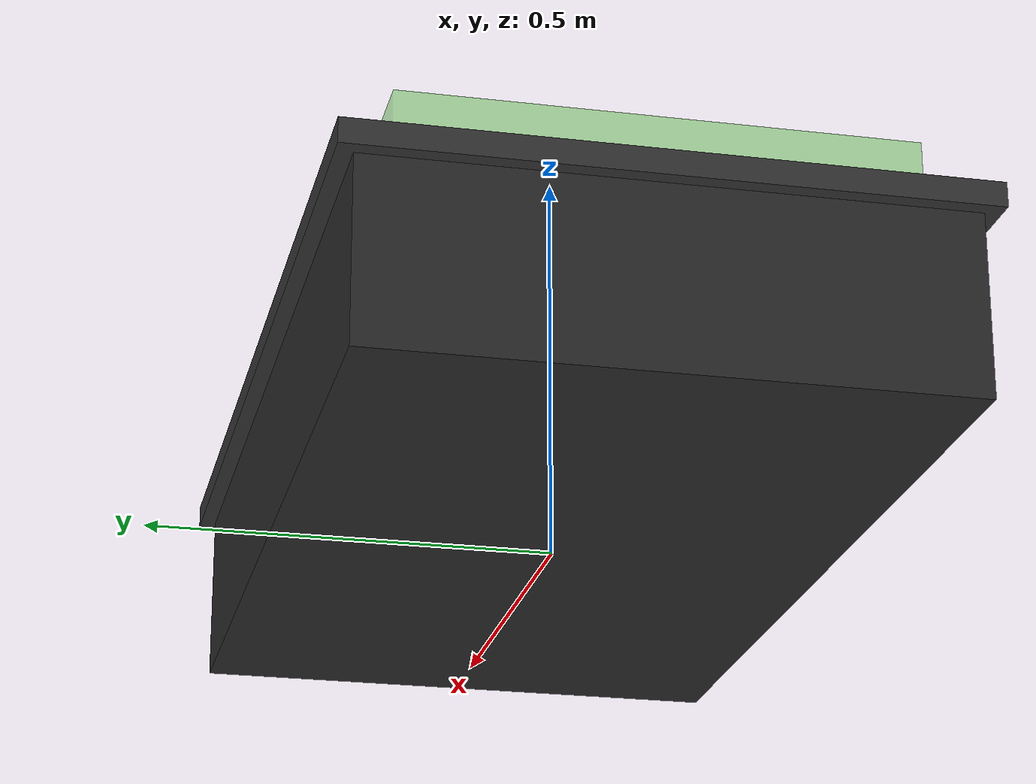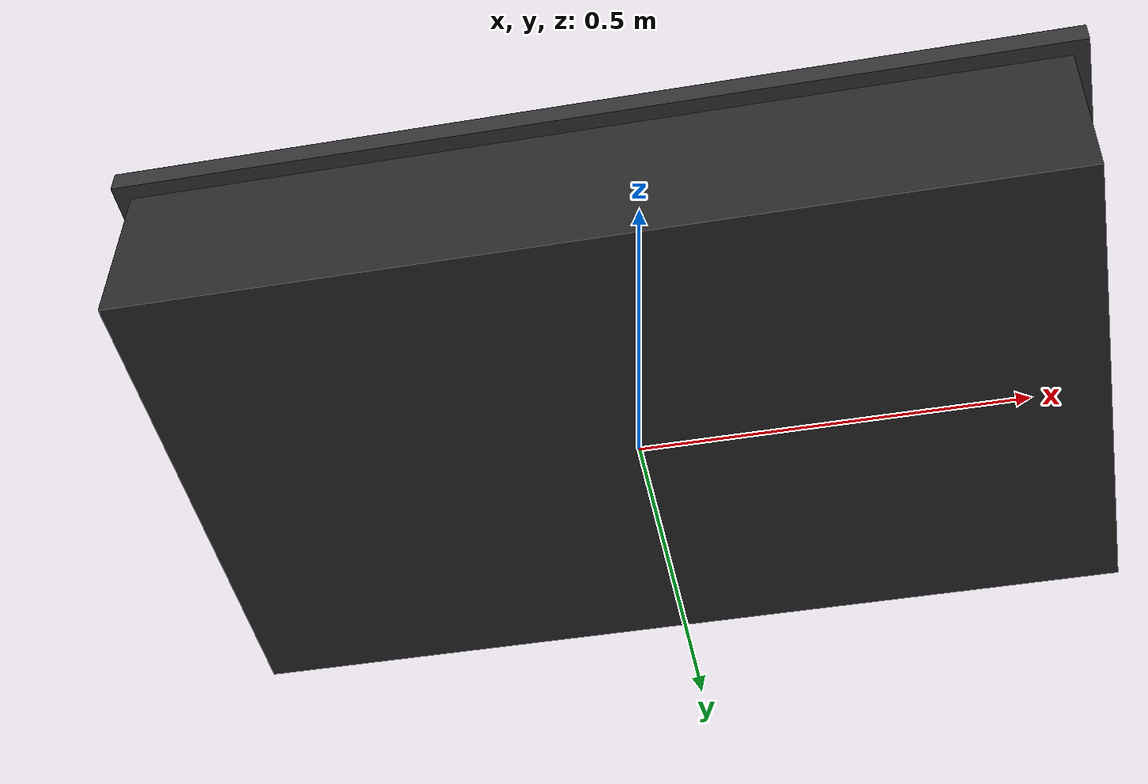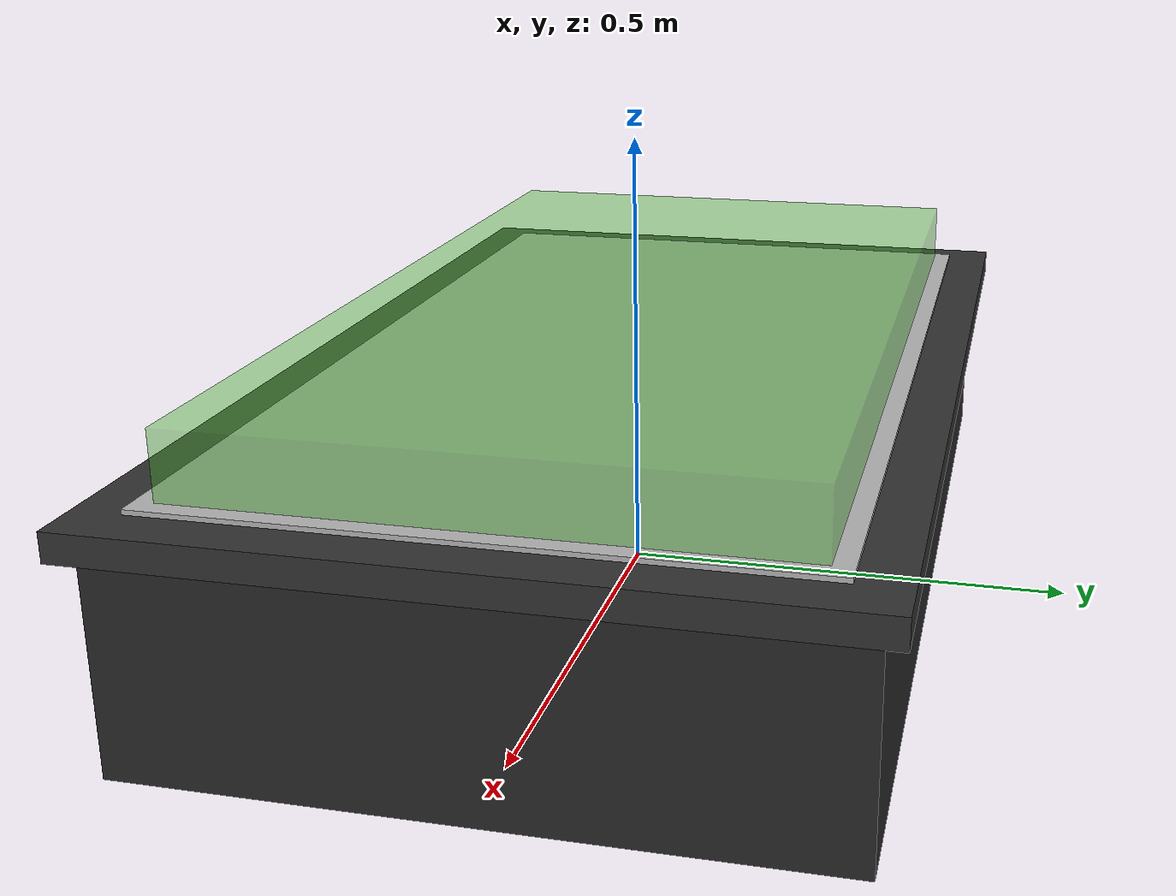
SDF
<?xml version="1.0"?>
<!-- Mat-type rice seedling tray, one per room corner (see nursery_room.world).
     Outer tub 1.20 x 0.70 x 0.25 m, dark plastic rim, soil + seedlings on top. -->
<sdf version="1.7">
  <model name="seedling_tray">
    <static>true</static>
    <link name="link">
      <collision name="tub">
        <pose>0 0 0.125 0 0 0</pose>
        <geometry><box><size>1.20 0.70 0.25</size></box></geometry>
      </collision>

      <!-- tub body -->
      <visual name="tub">
        <pose>0 0 0.11 0 0 0</pose>
        <geometry><box><size>1.20 0.70 0.22</size></box></geometry>
        <material>
          <ambient>0.10 0.10 0.10 1</ambient>
          <diffuse>0.16 0.16 0.16 1</diffuse>
          <specular>0.3 0.3 0.3 1</specular>
        </material>
      </visual>
      <!-- rim lip (slightly wider) -->
      <visual name="rim">
        <pose>0 0 0.235 0 0 0</pose>
        <geometry><box><size>1.24 0.74 0.03</size></box></geometry>
        <material>
          <ambient>0.12 0.12 0.12 1</ambient>
          <diffuse>0.20 0.20 0.20 1</diffuse>
          <specular>0.4 0.4 0.4 1</specular>
        </material>
      </visual>
      <!-- seedling mat surface (textured), 1 cm below the rim -->
      <visual name="seedlings">
        <pose>0 0 0.245 0 0 0</pose>
        <geometry><box><size>1.14 0.64 0.02</size></box></geometry>
        <material>
          <script>
            <uri>model://seedling_tray/materials/scripts</uri>
            <uri>model://seedling_tray/materials/textures</uri>
            <name>SeedlingTray/Seedlings</name>
          </script>
        </material>
      </visual>
      <!-- blades volume: translucent green slab so the crop has height in the camera -->
      <visual name="canopy">
        <pose>0 0 0.29 0 0 0</pose>
        <geometry><box><size>1.10 0.60 0.07</size></box></geometry>
        <transparency>0.55</transparency>
        <material>
          <ambient>0.20 0.55 0.15 1</ambient>
          <diffuse>0.30 0.75 0.20 1</diffuse>
          <specular>0.05 0.05 0.05 1</specular>
        </material>
      </visual>
    </link>
  </model>
</sdf>
